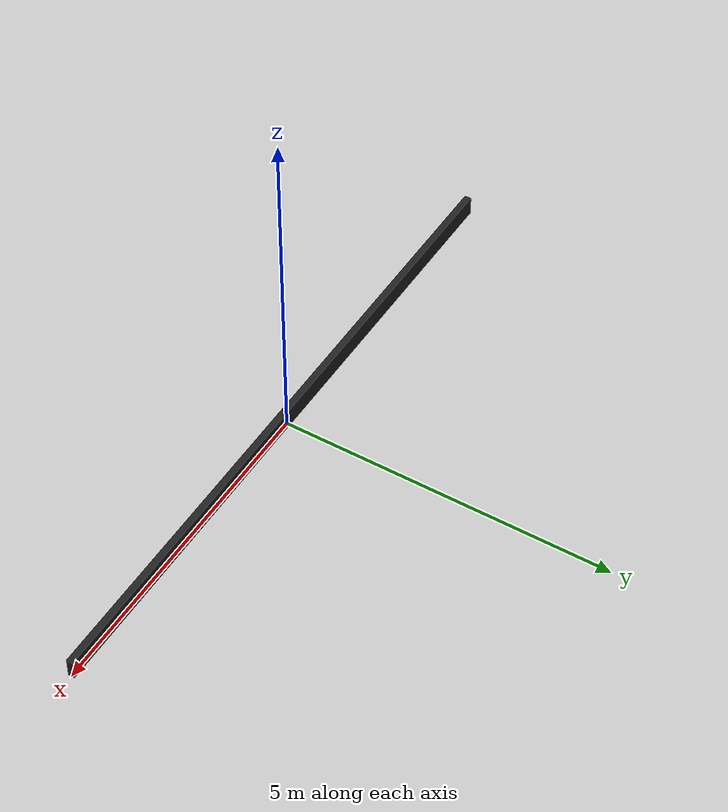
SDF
<?xml version="1.0" ?>
<sdf version="1.7">
  <model name="wall_10m">
    <static>true</static>
    <!-- 바닥 위에 놓이도록 링크의 중심을 z = 0.15(= 0.3/2) -->
    <pose>0 0 0.15 0 0 0</pose>

    <link name="link">
      <inertial>
        <mass>1.0</mass>
        <inertia>
          <ixx>1.0</ixx><iyy>1.0</iyy><izz>1.0</izz>
          <ixy>0</ixy><ixz>0</ixz><iyz>0</iyz>
        </inertia>
      </inertial>

      <collision name="collision">
        <geometry>
          <box>
            <size>10.0 0.1 0.3</size>
          </box>
        </geometry>
        <surface>
          <contact/>
          <friction>
            <ode/>
          </friction>
        </surface>
      </collision>

      <visual name="visual">
        <geometry>
          <box>
            <size>10.0 0.1 0.3</size>
          </box>
        </geometry>
        <material>
          <script>
            <uri>file://media/materials/scripts/gazebo.material</uri>
            <name>Gazebo/Black</name>
          </script>
        </material>
      </visual>
    </link>
  </model>
</sdf>
